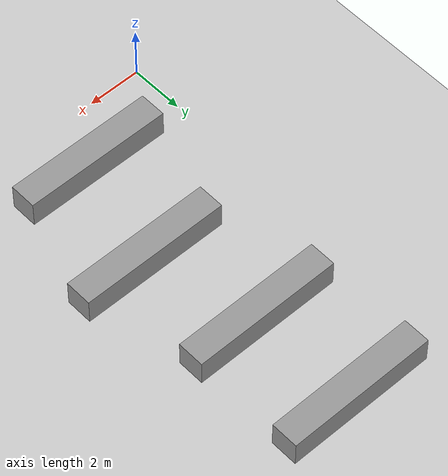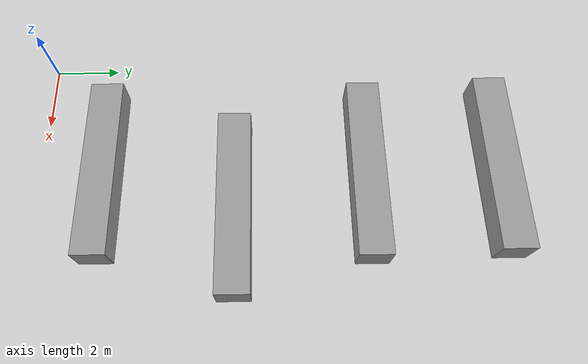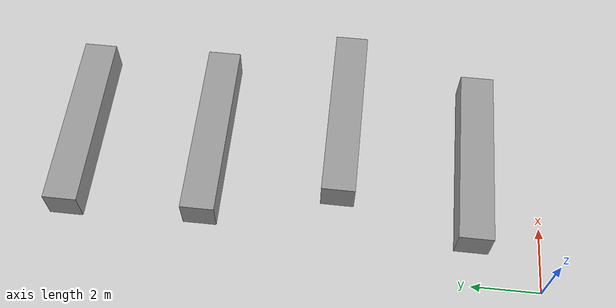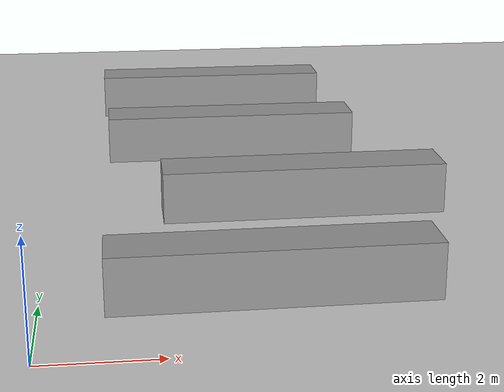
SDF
<sdf version="1.6">
 <world name="default">
  <light name="sun" type="directional">
   <pose>0 0 10 0 -0 0</pose>
   <diffuse>0.8 0.8 0.8 1</diffuse>
   <specular>0.2 0.2 0.2 1</specular>
   <attenuation>
    <range>1000</range>
    <constant>0.9</constant>
    <linear>0.01</linear>
    <quadratic>0.001</quadratic>
   </attenuation>
   <direction>-0.5 0.1 -0.9</direction>
  </light>
  <model name="ground_plane">
   <static>1</static>
   <link name="link">
    <collision name="collision">
     <geometry><plane><normal>0 0 1</normal><size>100 100</size></plane></geometry>
     <surface>
      <contact><collide_bitmask>65535</collide_bitmask></contact>
      <friction><ode><mu>100</mu><mu2>50</mu2></ode></friction>
     </surface>
    </collision>
    <visual name="visual">
     <cast_shadows>0</cast_shadows>
     <geometry><plane><normal>0 0 1</normal><size>100 100</size></plane></geometry>
     <material>
      <script><uri>file://media/materials/scripts/gazebo.material</uri><name>Gazebo/Grey</name></script>
     </material>
    </visual>
   </link>
  </model>
  <gravity>0 0 -9.8</gravity>
  <magnetic_field>6e-06 2.3e-05 -4.2e-05</magnetic_field>
  <atmosphere type="adiabatic"/>
  <physics name="default_physics" default="0" type="ode">
   <max_step_size>0.001</max_step_size>
   <real_time_factor>1</real_time_factor>
   <real_time_update_rate>1000</real_time_update_rate>
  </physics>
  <scene><ambient>0.4 0.4 0.4 1</ambient><background>0.7 0.7 0.7 1</background><shadows>1</shadows></scene>
  <audio><device>default</device></audio>
  <spherical_coordinates>
   <surface_model>EARTH_WGS84</surface_model>
   <latitude_deg>0</latitude_deg>
   <longitude_deg>0</longitude_deg>
   <elevation>0</elevation>
   <heading_deg>0</heading_deg>
  </spherical_coordinates>
  <model name="unit_box">
   <pose>3.81057 1.99772 0.496722 0 -0.001192 -4.8e-05</pose>
   <link name="link">
    <inertial>
     <mass>1</mass>
     <inertia>
      <ixx>0.166667</ixx>
      <ixy>0</ixy>
      <ixz>0</ixz>
      <iyy>0.166667</iyy>
      <iyz>0</iyz>
      <izz>0.166667</izz>
     </inertia>
    </inertial>
    <collision name="collision"><geometry><box><size>5.50328 1 1</size></box></geometry></collision>
    <visual name="visual">
     <geometry><box><size>5.50328 1 1</size></box></geometry>
     <material>
      <script><name>Gazebo/Grey</name><uri>file://media/materials/scripts/gazebo.material</uri></script>
     </material>
    </visual>
   </link>
  </model>
  <model name="unit_box_clone">
   <pose>4.94119 6 0.496635 0 -0.001216 -5.1e-05</pose>
   <link name="link">
    <inertial>
     <mass>1</mass>
     <inertia>
      <ixx>0.166667</ixx>
      <ixy>0</ixy>
      <ixz>0</ixz>
      <iyy>0.166667</iyy>
      <iyz>0</iyz>
      <izz>0.166667</izz>
     </inertia>
    </inertial>
    <collision name="collision"><geometry><box><size>5.53572 1 1</size></box></geometry></collision>
    <visual name="visual">
     <geometry><box><size>5.53572 1 1</size></box></geometry>
     <material>
      <script><name>Gazebo/Grey</name><uri>file://media/materials/scripts/gazebo.material</uri></script>
     </material>
    </visual>
   </link>
  </model>
  <model name="unit_box_clone_0">
   <pose>3.90982 10 0.496635 0 0.001216 5.1e-05</pose>
   <link name="link">
    <inertial>
     <mass>1</mass>
     <inertia>
      <ixx>0.166667</ixx>
      <ixy>0</ixy>
      <ixz>0</ixz>
      <iyy>0.166667</iyy>
      <iyz>0</iyz>
      <izz>0.166667</izz>
     </inertia>
    </inertial>
    <collision name="collision"><geometry><box><size>5.53572 1 1</size></box></geometry></collision>
    <visual name="visual">
     <geometry><box><size>5.53572 1 1</size></box></geometry>
     <material>
      <script><name>Gazebo/Grey</name><uri>file://media/materials/scripts/gazebo.material</uri></script>
     </material>
    </visual>
   </link>
  </model>
  <model name="unit_box_clone_0_clone">
   <pose>3.79763 14 0.496635 0 0.001216 5.1e-05</pose>
   <link name="link">
    <inertial>
     <mass>1</mass>
     <inertia>
      <ixx>0.166667</ixx>
      <ixy>0</ixy>
      <ixz>0</ixz>
      <iyy>0.166667</iyy>
      <iyz>0</iyz>
      <izz>0.166667</izz>
     </inertia>
    </inertial>
    <collision name="collision"><geometry><box><size>5.53572 1 1</size></box></geometry></collision>
    <visual name="visual">
     <geometry><box><size>5.53572 1 1</size></box></geometry>
     <material>
      <script><name>Gazebo/Grey</name><uri>file://media/materials/scripts/gazebo.material</uri></script>
     </material>
    </visual>
   </link>
  </model>
 </world>
</sdf>
